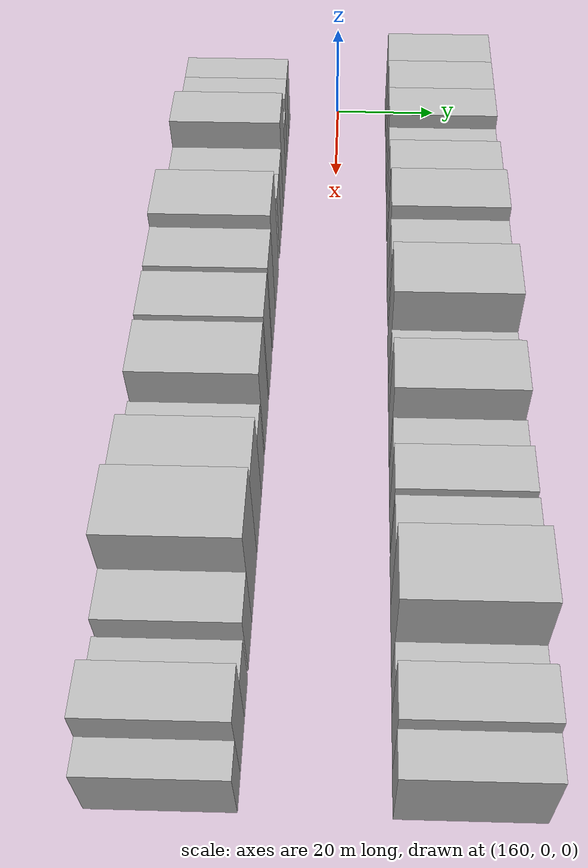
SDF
<sdf version="1.6">
 <world name="default">
  <model name="building_17">
   <static>1</static>
   <pose>162.2196 20.0000 0 0.000000 0.000000 1.570796</pose>
   <link name="link">
    <pose>0 0 9.00 0 0 0</pose>
    <collision name="collision"><geometry><box><size>20.0000 8.9540 18.0000</size></box></geometry></collision>
    <visual name="visual">
     <cast_shadows>0</cast_shadows>
     <geometry><box><size>20.0000 8.9540 18.0000</size></box></geometry>
     <material>
      <script>
       <uri>model://HANNAS_wall/materials/scripts</uri>
       <uri>model://HANNAS_wall/materials/textures</uri>
       <name>vrc/HANNAS_wall</name>
      </script>
     </material>
    </visual>
   </link>
  </model>
  <model name="building_18">
   <static>1</static>
   <pose>170.9655 20.0000 0 0.000000 0.000000 1.570796</pose>
   <link name="link">
    <pose>0 0 9.00 0 0 0</pose>
    <collision name="collision"><geometry><box><size>20.0000 8.5378 18.0000</size></box></geometry></collision>
    <visual name="visual">
     <cast_shadows>0</cast_shadows>
     <geometry><box><size>20.0000 8.5378 18.0000</size></box></geometry>
     <material>
      <script>
       <uri>model://HANNAS_wall/materials/scripts</uri>
       <uri>model://HANNAS_wall/materials/textures</uri>
       <name>vrc/HANNAS_wall</name>
      </script>
     </material>
    </visual>
   </link>
  </model>
  <model name="building_19">
   <static>1</static>
   <pose>179.3129 20.0000 0 0.000000 0.000000 1.570796</pose>
   <link name="link">
    <pose>0 0 9.00 0 0 0</pose>
    <collision name="collision"><geometry><box><size>20.0000 8.1570 18.0000</size></box></geometry></collision>
    <visual name="visual">
     <cast_shadows>0</cast_shadows>
     <geometry><box><size>20.0000 8.1570 18.0000</size></box></geometry>
     <material>
      <script>
       <uri>model://HANNAS_wall/materials/scripts</uri>
       <uri>model://HANNAS_wall/materials/textures</uri>
       <name>vrc/HANNAS_wall</name>
      </script>
     </material>
    </visual>
   </link>
  </model>
  <model name="building_20">
   <static>1</static>
   <pose>186.9675 20.0000 0 0.000000 0.000000 1.570796</pose>
   <link name="link">
    <pose>0 0 7.50 0 0 0</pose>
    <collision name="collision"><geometry><box><size>20.0000 7.1522 15.0000</size></box></geometry></collision>
    <visual name="visual">
     <cast_shadows>0</cast_shadows>
     <geometry><box><size>20.0000 7.1522 15.0000</size></box></geometry>
     <material>
      <script>
       <uri>model://HANNAS_wall/materials/scripts</uri>
       <uri>model://HANNAS_wall/materials/textures</uri>
       <name>vrc/HANNAS_wall</name>
      </script>
     </material>
    </visual>
   </link>
  </model>
  <model name="building_21">
   <static>1</static>
   <pose>194.6178 20.0000 0 0.000000 0.000000 1.570796</pose>
   <link name="link">
    <pose>0 0 9.00 0 0 0</pose>
    <collision name="collision"><geometry><box><size>20.0000 8.1486 18.0000</size></box></geometry></collision>
    <visual name="visual">
     <cast_shadows>0</cast_shadows>
     <geometry><box><size>20.0000 8.1486 18.0000</size></box></geometry>
     <material>
      <script>
       <uri>model://HANNAS_wall/materials/scripts</uri>
       <uri>model://HANNAS_wall/materials/textures</uri>
       <name>vrc/HANNAS_wall</name>
      </script>
     </material>
    </visual>
   </link>
  </model>
  <model name="building_22">
   <static>1</static>
   <pose>206.4582 20.0000 0 0.000000 0.000000 1.570796</pose>
   <link name="link">
    <pose>0 0 10.50 0 0 0</pose>
    <collision name="collision"><geometry><box><size>20.0000 9.5322 21.0000</size></box></geometry></collision>
    <visual name="visual">
     <cast_shadows>0</cast_shadows>
     <geometry><box><size>20.0000 9.5322 21.0000</size></box></geometry>
     <material>
      <script>
       <uri>model://HANNAS_wall/materials/scripts</uri>
       <uri>model://HANNAS_wall/materials/textures</uri>
       <name>vrc/HANNAS_wall</name>
      </script>
     </material>
    </visual>
   </link>
  </model>
  <model name="building_23">
   <static>1</static>
   <pose>215.4928 20.0000 0 0.000000 0.000000 1.570796</pose>
   <link name="link">
    <pose>0 0 9.00 0 0 0</pose>
    <collision name="collision"><geometry><box><size>20.0000 8.5369 18.0000</size></box></geometry></collision>
    <visual name="visual">
     <cast_shadows>0</cast_shadows>
     <geometry><box><size>20.0000 8.5369 18.0000</size></box></geometry>
     <material>
      <script>
       <uri>model://HANNAS_wall/materials/scripts</uri>
       <uri>model://HANNAS_wall/materials/textures</uri>
       <name>vrc/HANNAS_wall</name>
      </script>
     </material>
    </visual>
   </link>
  </model>
  <model name="building_24">
   <static>1</static>
   <pose>228.1328 20.0000 0 0.000000 0.000000 1.570796</pose>
   <link name="link">
    <pose>0 0 12.00 0 0 0</pose>
    <collision name="collision"><geometry><box><size>20.0000 10.7432 24.0000</size></box></geometry></collision>
    <visual name="visual">
     <cast_shadows>0</cast_shadows>
     <geometry><box><size>20.0000 10.7432 24.0000</size></box></geometry>
     <material>
      <script>
       <uri>model://HANNAS_wall/materials/scripts</uri>
       <uri>model://HANNAS_wall/materials/textures</uri>
       <name>vrc/HANNAS_wall</name>
      </script>
     </material>
    </visual>
   </link>
  </model>
  <model name="building_25">
   <static>1</static>
   <pose>236.8446 20.0000 0 0.000000 0.000000 1.570796</pose>
   <link name="link">
    <pose>0 0 7.50 0 0 0</pose>
    <collision name="collision"><geometry><box><size>20.0000 6.6804 15.0000</size></box></geometry></collision>
    <visual name="visual">
     <cast_shadows>0</cast_shadows>
     <geometry><box><size>20.0000 6.6804 15.0000</size></box></geometry>
     <material>
      <script>
       <uri>model://HANNAS_wall/materials/scripts</uri>
       <uri>model://HANNAS_wall/materials/textures</uri>
       <name>vrc/HANNAS_wall</name>
      </script>
     </material>
    </visual>
   </link>
  </model>
  <model name="building_26">
   <static>1</static>
   <pose>244.9300 20.0000 0 0.000000 0.000000 1.570796</pose>
   <link name="link">
    <pose>0 0 10.50 0 0 0</pose>
    <collision name="collision"><geometry><box><size>20.0000 9.4905 21.0000</size></box></geometry></collision>
    <visual name="visual">
     <cast_shadows>0</cast_shadows>
     <geometry><box><size>20.0000 9.4905 21.0000</size></box></geometry>
     <material>
      <script>
       <uri>model://HANNAS_wall/materials/scripts</uri>
       <uri>model://HANNAS_wall/materials/textures</uri>
       <name>vrc/HANNAS_wall</name>
      </script>
     </material>
    </visual>
   </link>
  </model>
  <model name="building_27">
   <static>1</static>
   <pose>254.0313 20.0000 0 0.000000 0.000000 1.570796</pose>
   <link name="link">
    <pose>0 0 7.50 0 0 0</pose>
    <collision name="collision"><geometry><box><size>20.0000 6.7121 15.0000</size></box></geometry></collision>
    <visual name="visual">
     <cast_shadows>0</cast_shadows>
     <geometry><box><size>20.0000 6.7121 15.0000</size></box></geometry>
     <material>
      <script>
       <uri>model://HANNAS_wall/materials/scripts</uri>
       <uri>model://HANNAS_wall/materials/textures</uri>
       <name>vrc/HANNAS_wall</name>
      </script>
     </material>
    </visual>
   </link>
  </model>
  <model name="building_28">
   <static>1</static>
   <pose>261.1885 20.0000 0 0.000000 0.000000 1.570796</pose>
   <link name="link">
    <pose>0 0 9.00 0 0 0</pose>
    <collision name="collision"><geometry><box><size>20.0000 7.6023 18.0000</size></box></geometry></collision>
    <visual name="visual">
     <cast_shadows>0</cast_shadows>
     <geometry><box><size>20.0000 7.6023 18.0000</size></box></geometry>
     <material>
      <script>
       <uri>model://HANNAS_wall/materials/scripts</uri>
       <uri>model://HANNAS_wall/materials/textures</uri>
       <name>vrc/HANNAS_wall</name>
      </script>
     </material>
    </visual>
   </link>
  </model>
  <model name="building_29">
   <static>1</static>
   <pose>269.9641 20.0000 0 0.000000 0.000000 1.570796</pose>
   <link name="link">
    <pose>0 0 9.00 0 0 0</pose>
    <collision name="collision"><geometry><box><size>20.0000 7.9489 18.0000</size></box></geometry></collision>
    <visual name="visual">
     <cast_shadows>0</cast_shadows>
     <geometry><box><size>20.0000 7.9489 18.0000</size></box></geometry>
     <material>
      <script>
       <uri>model://HANNAS_wall/materials/scripts</uri>
       <uri>model://HANNAS_wall/materials/textures</uri>
       <name>vrc/HANNAS_wall</name>
      </script>
     </material>
    </visual>
   </link>
  </model>
  <model name="building_30">
   <static>1</static>
   <pose>279.3393 20.0000 0 0.000000 0.000000 1.570796</pose>
   <link name="link">
    <pose>0 0 12.00 0 0 0</pose>
    <collision name="collision"><geometry><box><size>20.0000 10.8015 24.0000</size></box></geometry></collision>
    <visual name="visual">
     <cast_shadows>0</cast_shadows>
     <geometry><box><size>20.0000 10.8015 24.0000</size></box></geometry>
     <material>
      <script>
       <uri>model://HANNAS_wall/materials/scripts</uri>
       <uri>model://HANNAS_wall/materials/textures</uri>
       <name>vrc/HANNAS_wall</name>
      </script>
     </material>
    </visual>
   </link>
  </model>
  <model name="building_31">
   <static>1</static>
   <pose>287.3573 20.0000 0 0.000000 0.000000 1.570796</pose>
   <link name="link">
    <pose>0 0 6.00 0 0 0</pose>
    <collision name="collision"><geometry><box><size>20.0000 5.2344 12.0000</size></box></geometry></collision>
    <visual name="visual">
     <cast_shadows>0</cast_shadows>
     <geometry><box><size>20.0000 5.2344 12.0000</size></box></geometry>
     <material>
      <script>
       <uri>model://HANNAS_wall/materials/scripts</uri>
       <uri>model://HANNAS_wall/materials/textures</uri>
       <name>vrc/HANNAS_wall</name>
      </script>
     </material>
    </visual>
   </link>
  </model>
  <model name="building_32">
   <static>1</static>
   <pose>293.6789 20.0000 0 0.000000 0.000000 1.570796</pose>
   <link name="link">
    <pose>0 0 9.00 0 0 0</pose>
    <collision name="collision"><geometry><box><size>20.0000 7.4087 18.0000</size></box></geometry></collision>
    <visual name="visual">
     <cast_shadows>0</cast_shadows>
     <geometry><box><size>20.0000 7.4087 18.0000</size></box></geometry>
     <material>
      <script>
       <uri>model://HANNAS_wall/materials/scripts</uri>
       <uri>model://HANNAS_wall/materials/textures</uri>
       <name>vrc/HANNAS_wall</name>
      </script>
     </material>
    </visual>
   </link>
  </model>
  <model name="building_33">
   <static>1</static>
   <pose>300.4139 20.0000 0 0.000000 0.000000 1.570796</pose>
   <link name="link">
    <pose>0 0 7.50 0 0 0</pose>
    <collision name="collision"><geometry><box><size>20.0000 6.0613 15.0000</size></box></geometry></collision>
    <visual name="visual">
     <cast_shadows>0</cast_shadows>
     <geometry><box><size>20.0000 6.0613 15.0000</size></box></geometry>
     <material>
      <script>
       <uri>model://HANNAS_wall/materials/scripts</uri>
       <uri>model://HANNAS_wall/materials/textures</uri>
       <name>vrc/HANNAS_wall</name>
      </script>
     </material>
    </visual>
   </link>
  </model>
  <model name="building_50">
   <static>1</static>
   <pose>165.8320 -20.0000 0 0.000000 0.000000 1.570796</pose>
   <link name="link">
    <pose>0 0 7.50 0 0 0</pose>
    <collision name="collision"><geometry><box><size>20.0000 6.4067 15.0000</size></box></geometry></collision>
    <visual name="visual">
     <cast_shadows>0</cast_shadows>
     <geometry><box><size>20.0000 6.4067 15.0000</size></box></geometry>
     <material>
      <script>
       <uri>model://HANNAS_wall/materials/scripts</uri>
       <uri>model://HANNAS_wall/materials/textures</uri>
       <name>vrc/HANNAS_wall</name>
      </script>
     </material>
    </visual>
   </link>
  </model>
  <model name="building_51">
   <static>1</static>
   <pose>172.2355 -20.0000 0 0.000000 0.000000 1.570796</pose>
   <link name="link">
    <pose>0 0 7.50 0 0 0</pose>
    <collision name="collision"><geometry><box><size>20.0000 6.4002 15.0000</size></box></geometry></collision>
    <visual name="visual">
     <cast_shadows>0</cast_shadows>
     <geometry><box><size>20.0000 6.4002 15.0000</size></box></geometry>
     <material>
      <script>
       <uri>model://HANNAS_wall/materials/scripts</uri>
       <uri>model://HANNAS_wall/materials/textures</uri>
       <name>vrc/HANNAS_wall</name>
      </script>
     </material>
    </visual>
   </link>
  </model>
  <model name="building_52">
   <static>1</static>
   <pose>178.4016 -20.0000 0 0.000000 0.000000 1.570796</pose>
   <link name="link">
    <pose>0 0 6.00 0 0 0</pose>
    <collision name="collision"><geometry><box><size>20.0000 5.9320 12.0000</size></box></geometry></collision>
    <visual name="visual">
     <cast_shadows>0</cast_shadows>
     <geometry><box><size>20.0000 5.9320 12.0000</size></box></geometry>
     <material>
      <script>
       <uri>model://HANNAS_wall/materials/scripts</uri>
       <uri>model://HANNAS_wall/materials/textures</uri>
       <name>vrc/HANNAS_wall</name>
      </script>
     </material>
    </visual>
   </link>
  </model>
  <model name="building_53">
   <static>1</static>
   <pose>185.7401 -20.0000 0 0.000000 0.000000 1.570796</pose>
   <link name="link">
    <pose>0 0 10.50 0 0 0</pose>
    <collision name="collision"><geometry><box><size>20.0000 8.7452 21.0000</size></box></geometry></collision>
    <visual name="visual">
     <cast_shadows>0</cast_shadows>
     <geometry><box><size>20.0000 8.7452 21.0000</size></box></geometry>
     <material>
      <script>
       <uri>model://HANNAS_wall/materials/scripts</uri>
       <uri>model://HANNAS_wall/materials/textures</uri>
       <name>vrc/HANNAS_wall</name>
      </script>
     </material>
    </visual>
   </link>
  </model>
  <model name="building_54">
   <static>1</static>
   <pose>193.5712 -20.0000 0 0.000000 0.000000 1.570796</pose>
   <link name="link">
    <pose>0 0 7.50 0 0 0</pose>
    <collision name="collision"><geometry><box><size>20.0000 6.9170 15.0000</size></box></geometry></collision>
    <visual name="visual">
     <cast_shadows>0</cast_shadows>
     <geometry><box><size>20.0000 6.9170 15.0000</size></box></geometry>
     <material>
      <script>
       <uri>model://HANNAS_wall/materials/scripts</uri>
       <uri>model://HANNAS_wall/materials/textures</uri>
       <name>vrc/HANNAS_wall</name>
      </script>
     </material>
    </visual>
   </link>
  </model>
  <model name="building_55">
   <static>1</static>
   <pose>200.2827 -20.0000 0 0.000000 0.000000 1.570796</pose>
   <link name="link">
    <pose>0 0 7.50 0 0 0</pose>
    <collision name="collision"><geometry><box><size>20.0000 6.5060 15.0000</size></box></geometry></collision>
    <visual name="visual">
     <cast_shadows>0</cast_shadows>
     <geometry><box><size>20.0000 6.5060 15.0000</size></box></geometry>
     <material>
      <script>
       <uri>model://HANNAS_wall/materials/scripts</uri>
       <uri>model://HANNAS_wall/materials/textures</uri>
       <name>vrc/HANNAS_wall</name>
      </script>
     </material>
    </visual>
   </link>
  </model>
  <model name="building_56">
   <static>1</static>
   <pose>211.9274 -20.0000 0 0.000000 0.000000 1.570796</pose>
   <link name="link">
    <pose>0 0 12.00 0 0 0</pose>
    <collision name="collision"><geometry><box><size>20.0000 10.7833 24.0000</size></box></geometry></collision>
    <visual name="visual">
     <cast_shadows>0</cast_shadows>
     <geometry><box><size>20.0000 10.7833 24.0000</size></box></geometry>
     <material>
      <script>
       <uri>model://HANNAS_wall/materials/scripts</uri>
       <uri>model://HANNAS_wall/materials/textures</uri>
       <name>vrc/HANNAS_wall</name>
      </script>
     </material>
    </visual>
   </link>
  </model>
  <model name="building_57">
   <static>1</static>
   <pose>221.7793 -20.0000 0 0.000000 0.000000 1.570796</pose>
   <link name="link">
    <pose>0 0 10.50 0 0 0</pose>
    <collision name="collision"><geometry><box><size>20.0000 8.9206 21.0000</size></box></geometry></collision>
    <visual name="visual">
     <cast_shadows>0</cast_shadows>
     <geometry><box><size>20.0000 8.9206 21.0000</size></box></geometry>
     <material>
      <script>
       <uri>model://HANNAS_wall/materials/scripts</uri>
       <uri>model://HANNAS_wall/materials/textures</uri>
       <name>vrc/HANNAS_wall</name>
      </script>
     </material>
    </visual>
   </link>
  </model>
  <model name="building_58">
   <static>1</static>
   <pose>231.9259 -20.0000 0 0.000000 0.000000 1.570796</pose>
   <link name="link">
    <pose>0 0 10.50 0 0 0</pose>
    <collision name="collision"><geometry><box><size>20.0000 9.3726 21.0000</size></box></geometry></collision>
    <visual name="visual">
     <cast_shadows>0</cast_shadows>
     <geometry><box><size>20.0000 9.3726 21.0000</size></box></geometry>
     <material>
      <script>
       <uri>model://HANNAS_wall/materials/scripts</uri>
       <uri>model://HANNAS_wall/materials/textures</uri>
       <name>vrc/HANNAS_wall</name>
      </script>
     </material>
    </visual>
   </link>
  </model>
  <model name="building_59">
   <static>1</static>
   <pose>242.6646 -20.0000 0 0.000000 0.000000 1.570796</pose>
   <link name="link">
    <pose>0 0 10.50 0 0 0</pose>
    <collision name="collision"><geometry><box><size>20.0000 10.1049 21.0000</size></box></geometry></collision>
    <visual name="visual">
     <cast_shadows>0</cast_shadows>
     <geometry><box><size>20.0000 10.1049 21.0000</size></box></geometry>
     <material>
      <script>
       <uri>model://HANNAS_wall/materials/scripts</uri>
       <uri>model://HANNAS_wall/materials/textures</uri>
       <name>vrc/HANNAS_wall</name>
      </script>
     </material>
    </visual>
   </link>
  </model>
  <model name="building_60">
   <static>1</static>
   <pose>252.1143 -20.0000 0 0.000000 0.000000 1.570796</pose>
   <link name="link">
    <pose>0 0 7.50 0 0 0</pose>
    <collision name="collision"><geometry><box><size>20.0000 6.7946 15.0000</size></box></geometry></collision>
    <visual name="visual">
     <cast_shadows>0</cast_shadows>
     <geometry><box><size>20.0000 6.7946 15.0000</size></box></geometry>
     <material>
      <script>
       <uri>model://HANNAS_wall/materials/scripts</uri>
       <uri>model://HANNAS_wall/materials/textures</uri>
       <name>vrc/HANNAS_wall</name>
      </script>
     </material>
    </visual>
   </link>
  </model>
  <model name="building_61">
   <static>1</static>
   <pose>260.7395 -20.0000 0 0.000000 0.000000 1.570796</pose>
   <link name="link">
    <pose>0 0 10.50 0 0 0</pose>
    <collision name="collision"><geometry><box><size>20.0000 10.4557 21.0000</size></box></geometry></collision>
    <visual name="visual">
     <cast_shadows>0</cast_shadows>
     <geometry><box><size>20.0000 10.4557 21.0000</size></box></geometry>
     <material>
      <script>
       <uri>model://HANNAS_wall/materials/scripts</uri>
       <uri>model://HANNAS_wall/materials/textures</uri>
       <name>vrc/HANNAS_wall</name>
      </script>
     </material>
    </visual>
   </link>
  </model>
  <model name="building_62">
   <static>1</static>
   <pose>271.3600 -20.0000 0 0.000000 0.000000 1.570796</pose>
   <link name="link">
    <pose>0 0 12.00 0 0 0</pose>
    <collision name="collision"><geometry><box><size>20.0000 10.7853 24.0000</size></box></geometry></collision>
    <visual name="visual">
     <cast_shadows>0</cast_shadows>
     <geometry><box><size>20.0000 10.7853 24.0000</size></box></geometry>
     <material>
      <script>
       <uri>model://HANNAS_wall/materials/scripts</uri>
       <uri>model://HANNAS_wall/materials/textures</uri>
       <name>vrc/HANNAS_wall</name>
      </script>
     </material>
    </visual>
   </link>
  </model>
  <model name="building_63">
   <static>1</static>
   <pose>280.4081 -20.0000 0 0.000000 0.000000 1.570796</pose>
   <link name="link">
    <pose>0 0 7.50 0 0 0</pose>
    <collision name="collision"><geometry><box><size>20.0000 7.3108 15.0000</size></box></geometry></collision>
    <visual name="visual">
     <cast_shadows>0</cast_shadows>
     <geometry><box><size>20.0000 7.3108 15.0000</size></box></geometry>
     <material>
      <script>
       <uri>model://HANNAS_wall/materials/scripts</uri>
       <uri>model://HANNAS_wall/materials/textures</uri>
       <name>vrc/HANNAS_wall</name>
      </script>
     </material>
    </visual>
   </link>
  </model>
  <model name="building_64">
   <static>1</static>
   <pose>287.9870 -20.0000 0 0.000000 0.000000 1.570796</pose>
   <link name="link">
    <pose>0 0 6.00 0 0 0</pose>
    <collision name="collision"><geometry><box><size>20.0000 5.8470 12.0000</size></box></geometry></collision>
    <visual name="visual">
     <cast_shadows>0</cast_shadows>
     <geometry><box><size>20.0000 5.8470 12.0000</size></box></geometry>
     <material>
      <script>
       <uri>model://HANNAS_wall/materials/scripts</uri>
       <uri>model://HANNAS_wall/materials/textures</uri>
       <name>vrc/HANNAS_wall</name>
      </script>
     </material>
    </visual>
   </link>
  </model>
  <model name="building_65">
   <static>1</static>
   <pose>294.5843 -20.0000 0 0.000000 0.000000 1.570796</pose>
   <link name="link">
    <pose>0 0 9.00 0 0 0</pose>
    <collision name="collision"><geometry><box><size>20.0000 7.3477 18.0000</size></box></geometry></collision>
    <visual name="visual">
     <cast_shadows>0</cast_shadows>
     <geometry><box><size>20.0000 7.3477 18.0000</size></box></geometry>
     <material>
      <script>
       <uri>model://HANNAS_wall/materials/scripts</uri>
       <uri>model://HANNAS_wall/materials/textures</uri>
       <name>vrc/HANNAS_wall</name>
      </script>
     </material>
    </visual>
   </link>
  </model>
  <model name="building_66">
   <static>1</static>
   <pose>300.7013 -20.0000 0 0.000000 0.000000 1.570796</pose>
   <link name="link">
    <pose>0 0 6.00 0 0 0</pose>
    <collision name="collision"><geometry><box><size>20.0000 4.8863 12.0000</size></box></geometry></collision>
    <visual name="visual">
     <cast_shadows>0</cast_shadows>
     <geometry><box><size>20.0000 4.8863 12.0000</size></box></geometry>
     <material>
      <script>
       <uri>model://HANNAS_wall/materials/scripts</uri>
       <uri>model://HANNAS_wall/materials/textures</uri>
       <name>vrc/HANNAS_wall</name>
      </script>
     </material>
    </visual>
   </link>
  </model>
 </world>
</sdf>
